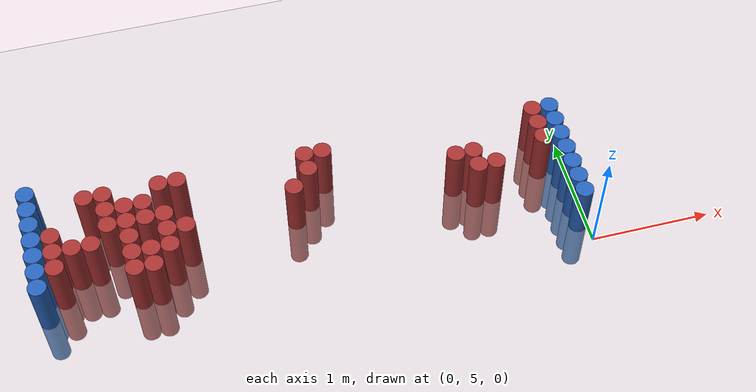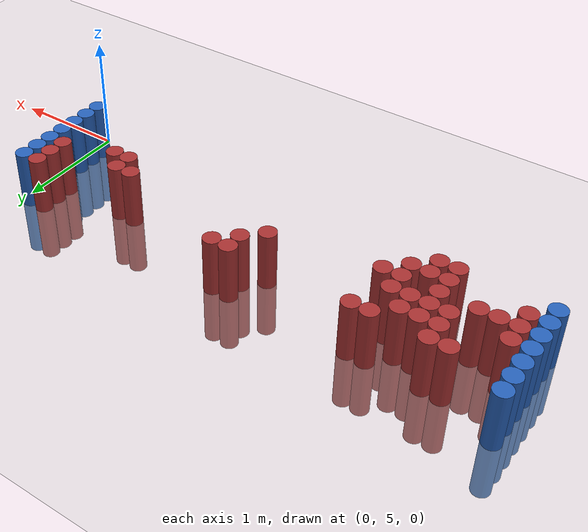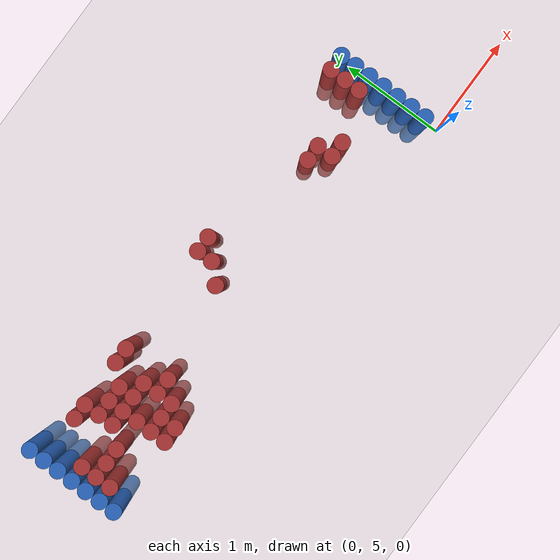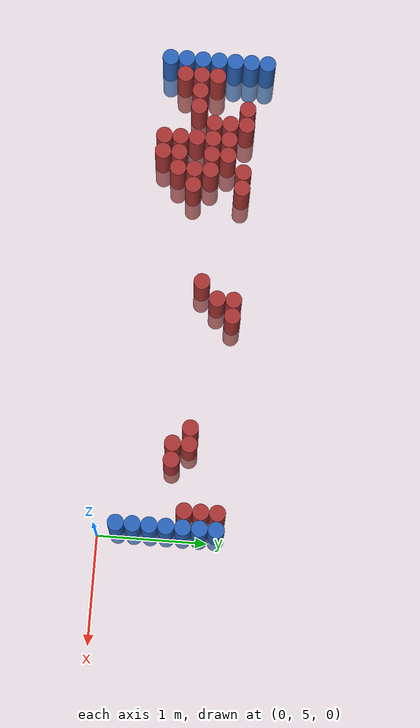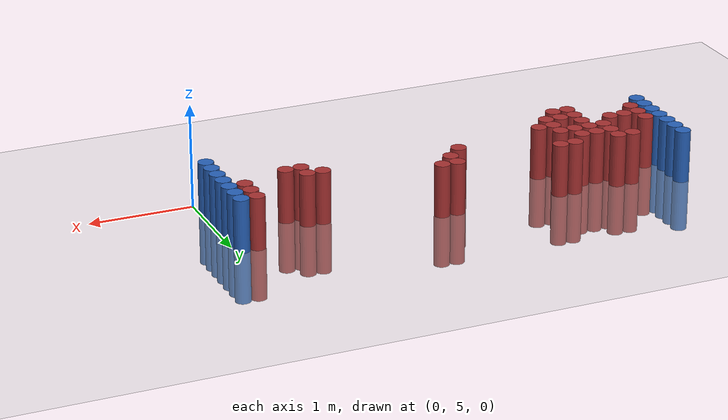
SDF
<sdf version="1.6">
 <world name="default">
  <model name="ground_plane">
   <static>1</static>
   <link name="link">
    <collision name="collision">
     <geometry><plane><normal>0 0 1</normal><size>100 100</size></plane></geometry>
     <surface><friction><ode><mu>100</mu><mu2>50</mu2></ode></friction></surface>
    </collision>
    <visual name="visual">
     <cast_shadows>0</cast_shadows>
     <geometry><plane><normal>0 0 1</normal><size>100 100</size></plane></geometry>
     <material>
      <script><uri>file://media/materials/scripts/gazebo.material</uri><name>Gazebo/Grey</name></script>
     </material>
    </visual>
   </link>
  </model>
  <model name="unit_cylinder_97">
   <static>1</static>
   <pose>-4.425000 5.325000 0.000000 0.000000 0.000000 0.000000</pose>
   <link name="link">
    <inertial>
     <mass>1</mass>
     <inertia><ixx>0.145833</ixx><ixy>0</ixy><ixz>0</ixz><iyy>0.145833</iyy><iyz>0</iyz><izz>0.125</izz></inertia>
    </inertial>
    <collision name="collision">
     <geometry><cylinder><radius>0.075000</radius><length>1</length></cylinder></geometry>
    </collision>
    <visual name="visual">
     <geometry><cylinder><radius>0.075000</radius><length>1</length></cylinder></geometry>
     <material>
      <ambient>0.152000 0.379000 0.720000 1</ambient>
      <diffuse>0.152000 0.379000 0.720000 1</diffuse>
     </material>
     <material>
      <script><name>Gazebo/Grey</name><uri>file://media/materials/scripts/gazebo.material</uri></script>
     </material>
    </visual>
   </link>
  </model>
  <model name="unit_cylinder_98">
   <static>1</static>
   <pose>-4.425000 5.475000 0.000000 0.000000 0.000000 0.000000</pose>
   <link name="link">
    <inertial>
     <mass>1</mass>
     <inertia><ixx>0.145833</ixx><ixy>0</ixy><ixz>0</ixz><iyy>0.145833</iyy><iyz>0</iyz><izz>0.125</izz></inertia>
    </inertial>
    <collision name="collision">
     <geometry><cylinder><radius>0.075000</radius><length>1</length></cylinder></geometry>
    </collision>
    <visual name="visual">
     <geometry><cylinder><radius>0.075000</radius><length>1</length></cylinder></geometry>
     <material>
      <ambient>0.152000 0.379000 0.720000 1</ambient>
      <diffuse>0.152000 0.379000 0.720000 1</diffuse>
     </material>
     <material>
      <script><name>Gazebo/Grey</name><uri>file://media/materials/scripts/gazebo.material</uri></script>
     </material>
    </visual>
   </link>
  </model>
  <model name="unit_cylinder_99">
   <static>1</static>
   <pose>-4.425000 5.625000 0.000000 0.000000 0.000000 0.000000</pose>
   <link name="link">
    <inertial>
     <mass>1</mass>
     <inertia><ixx>0.145833</ixx><ixy>0</ixy><ixz>0</ixz><iyy>0.145833</iyy><iyz>0</iyz><izz>0.125</izz></inertia>
    </inertial>
    <collision name="collision">
     <geometry><cylinder><radius>0.075000</radius><length>1</length></cylinder></geometry>
    </collision>
    <visual name="visual">
     <geometry><cylinder><radius>0.075000</radius><length>1</length></cylinder></geometry>
     <material>
      <ambient>0.152000 0.379000 0.720000 1</ambient>
      <diffuse>0.152000 0.379000 0.720000 1</diffuse>
     </material>
     <material>
      <script><name>Gazebo/Grey</name><uri>file://media/materials/scripts/gazebo.material</uri></script>
     </material>
    </visual>
   </link>
  </model>
  <model name="unit_cylinder_100">
   <static>1</static>
   <pose>-4.425000 5.775000 0.000000 0.000000 0.000000 0.000000</pose>
   <link name="link">
    <inertial>
     <mass>1</mass>
     <inertia><ixx>0.145833</ixx><ixy>0</ixy><ixz>0</ixz><iyy>0.145833</iyy><iyz>0</iyz><izz>0.125</izz></inertia>
    </inertial>
    <collision name="collision">
     <geometry><cylinder><radius>0.075000</radius><length>1</length></cylinder></geometry>
    </collision>
    <visual name="visual">
     <geometry><cylinder><radius>0.075000</radius><length>1</length></cylinder></geometry>
     <material>
      <ambient>0.152000 0.379000 0.720000 1</ambient>
      <diffuse>0.152000 0.379000 0.720000 1</diffuse>
     </material>
     <material>
      <script><name>Gazebo/Grey</name><uri>file://media/materials/scripts/gazebo.material</uri></script>
     </material>
    </visual>
   </link>
  </model>
  <model name="unit_cylinder_101">
   <static>1</static>
   <pose>-4.425000 5.925000 0.000000 0.000000 0.000000 0.000000</pose>
   <link name="link">
    <inertial>
     <mass>1</mass>
     <inertia><ixx>0.145833</ixx><ixy>0</ixy><ixz>0</ixz><iyy>0.145833</iyy><iyz>0</iyz><izz>0.125</izz></inertia>
    </inertial>
    <collision name="collision">
     <geometry><cylinder><radius>0.075000</radius><length>1</length></cylinder></geometry>
    </collision>
    <visual name="visual">
     <geometry><cylinder><radius>0.075000</radius><length>1</length></cylinder></geometry>
     <material>
      <ambient>0.152000 0.379000 0.720000 1</ambient>
      <diffuse>0.152000 0.379000 0.720000 1</diffuse>
     </material>
     <material>
      <script><name>Gazebo/Grey</name><uri>file://media/materials/scripts/gazebo.material</uri></script>
     </material>
    </visual>
   </link>
  </model>
  <model name="unit_cylinder_102">
   <static>1</static>
   <pose>-4.425000 6.075000 0.000000 0.000000 0.000000 0.000000</pose>
   <link name="link">
    <inertial>
     <mass>1</mass>
     <inertia><ixx>0.145833</ixx><ixy>0</ixy><ixz>0</ixz><iyy>0.145833</iyy><iyz>0</iyz><izz>0.125</izz></inertia>
    </inertial>
    <collision name="collision">
     <geometry><cylinder><radius>0.075000</radius><length>1</length></cylinder></geometry>
    </collision>
    <visual name="visual">
     <geometry><cylinder><radius>0.075000</radius><length>1</length></cylinder></geometry>
     <material>
      <ambient>0.152000 0.379000 0.720000 1</ambient>
      <diffuse>0.152000 0.379000 0.720000 1</diffuse>
     </material>
     <material>
      <script><name>Gazebo/Grey</name><uri>file://media/materials/scripts/gazebo.material</uri></script>
     </material>
    </visual>
   </link>
  </model>
  <model name="unit_cylinder_103">
   <static>1</static>
   <pose>-4.425000 6.225000 0.000000 0.000000 0.000000 0.000000</pose>
   <link name="link">
    <inertial>
     <mass>1</mass>
     <inertia><ixx>0.145833</ixx><ixy>0</ixy><ixz>0</ixz><iyy>0.145833</iyy><iyz>0</iyz><izz>0.125</izz></inertia>
    </inertial>
    <collision name="collision">
     <geometry><cylinder><radius>0.075000</radius><length>1</length></cylinder></geometry>
    </collision>
    <visual name="visual">
     <geometry><cylinder><radius>0.075000</radius><length>1</length></cylinder></geometry>
     <material>
      <ambient>0.152000 0.379000 0.720000 1</ambient>
      <diffuse>0.152000 0.379000 0.720000 1</diffuse>
     </material>
     <material>
      <script><name>Gazebo/Grey</name><uri>file://media/materials/scripts/gazebo.material</uri></script>
     </material>
    </visual>
   </link>
  </model>
  <model name="unit_cylinder_126">
   <static>1</static>
   <pose>-4.275000 5.475000 0.000000 0.000000 0.000000 0.000000</pose>
   <link name="link">
    <inertial>
     <mass>1</mass>
     <inertia><ixx>0.145833</ixx><ixy>0</ixy><ixz>0</ixz><iyy>0.145833</iyy><iyz>0</iyz><izz>0.125</izz></inertia>
    </inertial>
    <collision name="collision">
     <geometry><cylinder><radius>0.075000</radius><length>1</length></cylinder></geometry>
    </collision>
    <visual name="visual">
     <geometry><cylinder><radius>0.075000</radius><length>1</length></cylinder></geometry>
     <material>
      <ambient>0.648000 0.192000 0.192000 1</ambient>
      <diffuse>0.648000 0.192000 0.192000 1</diffuse>
     </material>
     <material>
      <script><name>Gazebo/Grey</name><uri>file://media/materials/scripts/gazebo.material</uri></script>
     </material>
    </visual>
   </link>
  </model>
  <model name="unit_cylinder_127">
   <static>1</static>
   <pose>-4.275000 5.625000 0.000000 0.000000 0.000000 0.000000</pose>
   <link name="link">
    <inertial>
     <mass>1</mass>
     <inertia><ixx>0.145833</ixx><ixy>0</ixy><ixz>0</ixz><iyy>0.145833</iyy><iyz>0</iyz><izz>0.125</izz></inertia>
    </inertial>
    <collision name="collision">
     <geometry><cylinder><radius>0.075000</radius><length>1</length></cylinder></geometry>
    </collision>
    <visual name="visual">
     <geometry><cylinder><radius>0.075000</radius><length>1</length></cylinder></geometry>
     <material>
      <ambient>0.648000 0.192000 0.192000 1</ambient>
      <diffuse>0.648000 0.192000 0.192000 1</diffuse>
     </material>
     <material>
      <script><name>Gazebo/Grey</name><uri>file://media/materials/scripts/gazebo.material</uri></script>
     </material>
    </visual>
   </link>
  </model>
  <model name="unit_cylinder_128">
   <static>1</static>
   <pose>-4.275000 5.775000 0.000000 0.000000 0.000000 0.000000</pose>
   <link name="link">
    <inertial>
     <mass>1</mass>
     <inertia><ixx>0.145833</ixx><ixy>0</ixy><ixz>0</ixz><iyy>0.145833</iyy><iyz>0</iyz><izz>0.125</izz></inertia>
    </inertial>
    <collision name="collision">
     <geometry><cylinder><radius>0.075000</radius><length>1</length></cylinder></geometry>
    </collision>
    <visual name="visual">
     <geometry><cylinder><radius>0.075000</radius><length>1</length></cylinder></geometry>
     <material>
      <ambient>0.648000 0.192000 0.192000 1</ambient>
      <diffuse>0.648000 0.192000 0.192000 1</diffuse>
     </material>
     <material>
      <script><name>Gazebo/Grey</name><uri>file://media/materials/scripts/gazebo.material</uri></script>
     </material>
    </visual>
   </link>
  </model>
  <model name="unit_cylinder_135">
   <static>1</static>
   <pose>-4.125000 5.625000 0.000000 0.000000 0.000000 0.000000</pose>
   <link name="link">
    <inertial>
     <mass>1</mass>
     <inertia><ixx>0.145833</ixx><ixy>0</ixy><ixz>0</ixz><iyy>0.145833</iyy><iyz>0</iyz><izz>0.125</izz></inertia>
    </inertial>
    <collision name="collision">
     <geometry><cylinder><radius>0.075000</radius><length>1</length></cylinder></geometry>
    </collision>
    <visual name="visual">
     <geometry><cylinder><radius>0.075000</radius><length>1</length></cylinder></geometry>
     <material>
      <ambient>0.648000 0.192000 0.192000 1</ambient>
      <diffuse>0.648000 0.192000 0.192000 1</diffuse>
     </material>
     <material>
      <script><name>Gazebo/Grey</name><uri>file://media/materials/scripts/gazebo.material</uri></script>
     </material>
    </visual>
   </link>
  </model>
  <model name="unit_cylinder_139">
   <static>1</static>
   <pose>-3.975000 5.625000 0.000000 0.000000 0.000000 0.000000</pose>
   <link name="link">
    <inertial>
     <mass>1</mass>
     <inertia><ixx>0.145833</ixx><ixy>0</ixy><ixz>0</ixz><iyy>0.145833</iyy><iyz>0</iyz><izz>0.125</izz></inertia>
    </inertial>
    <collision name="collision">
     <geometry><cylinder><radius>0.075000</radius><length>1</length></cylinder></geometry>
    </collision>
    <visual name="visual">
     <geometry><cylinder><radius>0.075000</radius><length>1</length></cylinder></geometry>
     <material>
      <ambient>0.648000 0.192000 0.192000 1</ambient>
      <diffuse>0.648000 0.192000 0.192000 1</diffuse>
     </material>
     <material>
      <script><name>Gazebo/Grey</name><uri>file://media/materials/scripts/gazebo.material</uri></script>
     </material>
    </visual>
   </link>
  </model>
  <model name="unit_cylinder_140">
   <static>1</static>
   <pose>-3.975000 6.075000 0.000000 0.000000 0.000000 0.000000</pose>
   <link name="link">
    <inertial>
     <mass>1</mass>
     <inertia><ixx>0.145833</ixx><ixy>0</ixy><ixz>0</ixz><iyy>0.145833</iyy><iyz>0</iyz><izz>0.125</izz></inertia>
    </inertial>
    <collision name="collision">
     <geometry><cylinder><radius>0.075000</radius><length>1</length></cylinder></geometry>
    </collision>
    <visual name="visual">
     <geometry><cylinder><radius>0.075000</radius><length>1</length></cylinder></geometry>
     <material>
      <ambient>0.648000 0.192000 0.192000 1</ambient>
      <diffuse>0.648000 0.192000 0.192000 1</diffuse>
     </material>
     <material>
      <script><name>Gazebo/Grey</name><uri>file://media/materials/scripts/gazebo.material</uri></script>
     </material>
    </visual>
   </link>
  </model>
  <model name="unit_cylinder_144">
   <static>1</static>
   <pose>-3.825000 5.775000 0.000000 0.000000 0.000000 0.000000</pose>
   <link name="link">
    <inertial>
     <mass>1</mass>
     <inertia><ixx>0.145833</ixx><ixy>0</ixy><ixz>0</ixz><iyy>0.145833</iyy><iyz>0</iyz><izz>0.125</izz></inertia>
    </inertial>
    <collision name="collision">
     <geometry><cylinder><radius>0.075000</radius><length>1</length></cylinder></geometry>
    </collision>
    <visual name="visual">
     <geometry><cylinder><radius>0.075000</radius><length>1</length></cylinder></geometry>
     <material>
      <ambient>0.648000 0.192000 0.192000 1</ambient>
      <diffuse>0.648000 0.192000 0.192000 1</diffuse>
     </material>
     <material>
      <script><name>Gazebo/Grey</name><uri>file://media/materials/scripts/gazebo.material</uri></script>
     </material>
    </visual>
   </link>
  </model>
  <model name="unit_cylinder_145">
   <static>1</static>
   <pose>-3.825000 5.925000 0.000000 0.000000 0.000000 0.000000</pose>
   <link name="link">
    <inertial>
     <mass>1</mass>
     <inertia><ixx>0.145833</ixx><ixy>0</ixy><ixz>0</ixz><iyy>0.145833</iyy><iyz>0</iyz><izz>0.125</izz></inertia>
    </inertial>
    <collision name="collision">
     <geometry><cylinder><radius>0.075000</radius><length>1</length></cylinder></geometry>
    </collision>
    <visual name="visual">
     <geometry><cylinder><radius>0.075000</radius><length>1</length></cylinder></geometry>
     <material>
      <ambient>0.648000 0.192000 0.192000 1</ambient>
      <diffuse>0.648000 0.192000 0.192000 1</diffuse>
     </material>
     <material>
      <script><name>Gazebo/Grey</name><uri>file://media/materials/scripts/gazebo.material</uri></script>
     </material>
    </visual>
   </link>
  </model>
  <model name="unit_cylinder_146">
   <static>1</static>
   <pose>-3.825000 6.075000 0.000000 0.000000 0.000000 0.000000</pose>
   <link name="link">
    <inertial>
     <mass>1</mass>
     <inertia><ixx>0.145833</ixx><ixy>0</ixy><ixz>0</ixz><iyy>0.145833</iyy><iyz>0</iyz><izz>0.125</izz></inertia>
    </inertial>
    <collision name="collision">
     <geometry><cylinder><radius>0.075000</radius><length>1</length></cylinder></geometry>
    </collision>
    <visual name="visual">
     <geometry><cylinder><radius>0.075000</radius><length>1</length></cylinder></geometry>
     <material>
      <ambient>0.648000 0.192000 0.192000 1</ambient>
      <diffuse>0.648000 0.192000 0.192000 1</diffuse>
     </material>
     <material>
      <script><name>Gazebo/Grey</name><uri>file://media/materials/scripts/gazebo.material</uri></script>
     </material>
    </visual>
   </link>
  </model>
  <model name="unit_cylinder_149">
   <static>1</static>
   <pose>-3.675000 5.325000 0.000000 0.000000 0.000000 0.000000</pose>
   <link name="link">
    <inertial>
     <mass>1</mass>
     <inertia><ixx>0.145833</ixx><ixy>0</ixy><ixz>0</ixz><iyy>0.145833</iyy><iyz>0</iyz><izz>0.125</izz></inertia>
    </inertial>
    <collision name="collision">
     <geometry><cylinder><radius>0.075000</radius><length>1</length></cylinder></geometry>
    </collision>
    <visual name="visual">
     <geometry><cylinder><radius>0.075000</radius><length>1</length></cylinder></geometry>
     <material>
      <ambient>0.648000 0.192000 0.192000 1</ambient>
      <diffuse>0.648000 0.192000 0.192000 1</diffuse>
     </material>
     <material>
      <script><name>Gazebo/Grey</name><uri>file://media/materials/scripts/gazebo.material</uri></script>
     </material>
    </visual>
   </link>
  </model>
  <model name="unit_cylinder_150">
   <static>1</static>
   <pose>-3.675000 5.475000 0.000000 0.000000 0.000000 0.000000</pose>
   <link name="link">
    <inertial>
     <mass>1</mass>
     <inertia><ixx>0.145833</ixx><ixy>0</ixy><ixz>0</ixz><iyy>0.145833</iyy><iyz>0</iyz><izz>0.125</izz></inertia>
    </inertial>
    <collision name="collision">
     <geometry><cylinder><radius>0.075000</radius><length>1</length></cylinder></geometry>
    </collision>
    <visual name="visual">
     <geometry><cylinder><radius>0.075000</radius><length>1</length></cylinder></geometry>
     <material>
      <ambient>0.648000 0.192000 0.192000 1</ambient>
      <diffuse>0.648000 0.192000 0.192000 1</diffuse>
     </material>
     <material>
      <script><name>Gazebo/Grey</name><uri>file://media/materials/scripts/gazebo.material</uri></script>
     </material>
    </visual>
   </link>
  </model>
  <model name="unit_cylinder_151">
   <static>1</static>
   <pose>-3.675000 5.625000 0.000000 0.000000 0.000000 0.000000</pose>
   <link name="link">
    <inertial>
     <mass>1</mass>
     <inertia><ixx>0.145833</ixx><ixy>0</ixy><ixz>0</ixz><iyy>0.145833</iyy><iyz>0</iyz><izz>0.125</izz></inertia>
    </inertial>
    <collision name="collision">
     <geometry><cylinder><radius>0.075000</radius><length>1</length></cylinder></geometry>
    </collision>
    <visual name="visual">
     <geometry><cylinder><radius>0.075000</radius><length>1</length></cylinder></geometry>
     <material>
      <ambient>0.648000 0.192000 0.192000 1</ambient>
      <diffuse>0.648000 0.192000 0.192000 1</diffuse>
     </material>
     <material>
      <script><name>Gazebo/Grey</name><uri>file://media/materials/scripts/gazebo.material</uri></script>
     </material>
    </visual>
   </link>
  </model>
  <model name="unit_cylinder_152">
   <static>1</static>
   <pose>-3.675000 5.775000 0.000000 0.000000 0.000000 0.000000</pose>
   <link name="link">
    <inertial>
     <mass>1</mass>
     <inertia><ixx>0.145833</ixx><ixy>0</ixy><ixz>0</ixz><iyy>0.145833</iyy><iyz>0</iyz><izz>0.125</izz></inertia>
    </inertial>
    <collision name="collision">
     <geometry><cylinder><radius>0.075000</radius><length>1</length></cylinder></geometry>
    </collision>
    <visual name="visual">
     <geometry><cylinder><radius>0.075000</radius><length>1</length></cylinder></geometry>
     <material>
      <ambient>0.648000 0.192000 0.192000 1</ambient>
      <diffuse>0.648000 0.192000 0.192000 1</diffuse>
     </material>
     <material>
      <script><name>Gazebo/Grey</name><uri>file://media/materials/scripts/gazebo.material</uri></script>
     </material>
    </visual>
   </link>
  </model>
  <model name="unit_cylinder_153">
   <static>1</static>
   <pose>-3.675000 5.925000 0.000000 0.000000 0.000000 0.000000</pose>
   <link name="link">
    <inertial>
     <mass>1</mass>
     <inertia><ixx>0.145833</ixx><ixy>0</ixy><ixz>0</ixz><iyy>0.145833</iyy><iyz>0</iyz><izz>0.125</izz></inertia>
    </inertial>
    <collision name="collision">
     <geometry><cylinder><radius>0.075000</radius><length>1</length></cylinder></geometry>
    </collision>
    <visual name="visual">
     <geometry><cylinder><radius>0.075000</radius><length>1</length></cylinder></geometry>
     <material>
      <ambient>0.648000 0.192000 0.192000 1</ambient>
      <diffuse>0.648000 0.192000 0.192000 1</diffuse>
     </material>
     <material>
      <script><name>Gazebo/Grey</name><uri>file://media/materials/scripts/gazebo.material</uri></script>
     </material>
    </visual>
   </link>
  </model>
  <model name="unit_cylinder_161">
   <static>1</static>
   <pose>-3.525000 5.325000 0.000000 0.000000 0.000000 0.000000</pose>
   <link name="link">
    <inertial>
     <mass>1</mass>
     <inertia><ixx>0.145833</ixx><ixy>0</ixy><ixz>0</ixz><iyy>0.145833</iyy><iyz>0</iyz><izz>0.125</izz></inertia>
    </inertial>
    <collision name="collision">
     <geometry><cylinder><radius>0.075000</radius><length>1</length></cylinder></geometry>
    </collision>
    <visual name="visual">
     <geometry><cylinder><radius>0.075000</radius><length>1</length></cylinder></geometry>
     <material>
      <ambient>0.648000 0.192000 0.192000 1</ambient>
      <diffuse>0.648000 0.192000 0.192000 1</diffuse>
     </material>
     <material>
      <script><name>Gazebo/Grey</name><uri>file://media/materials/scripts/gazebo.material</uri></script>
     </material>
    </visual>
   </link>
  </model>
  <model name="unit_cylinder_162">
   <static>1</static>
   <pose>-3.525000 5.475000 0.000000 0.000000 0.000000 0.000000</pose>
   <link name="link">
    <inertial>
     <mass>1</mass>
     <inertia><ixx>0.145833</ixx><ixy>0</ixy><ixz>0</ixz><iyy>0.145833</iyy><iyz>0</iyz><izz>0.125</izz></inertia>
    </inertial>
    <collision name="collision">
     <geometry><cylinder><radius>0.075000</radius><length>1</length></cylinder></geometry>
    </collision>
    <visual name="visual">
     <geometry><cylinder><radius>0.075000</radius><length>1</length></cylinder></geometry>
     <material>
      <ambient>0.648000 0.192000 0.192000 1</ambient>
      <diffuse>0.648000 0.192000 0.192000 1</diffuse>
     </material>
     <material>
      <script><name>Gazebo/Grey</name><uri>file://media/materials/scripts/gazebo.material</uri></script>
     </material>
    </visual>
   </link>
  </model>
  <model name="unit_cylinder_163">
   <static>1</static>
   <pose>-3.525000 5.775000 0.000000 0.000000 0.000000 0.000000</pose>
   <link name="link">
    <inertial>
     <mass>1</mass>
     <inertia><ixx>0.145833</ixx><ixy>0</ixy><ixz>0</ixz><iyy>0.145833</iyy><iyz>0</iyz><izz>0.125</izz></inertia>
    </inertial>
    <collision name="collision">
     <geometry><cylinder><radius>0.075000</radius><length>1</length></cylinder></geometry>
    </collision>
    <visual name="visual">
     <geometry><cylinder><radius>0.075000</radius><length>1</length></cylinder></geometry>
     <material>
      <ambient>0.648000 0.192000 0.192000 1</ambient>
      <diffuse>0.648000 0.192000 0.192000 1</diffuse>
     </material>
     <material>
      <script><name>Gazebo/Grey</name><uri>file://media/materials/scripts/gazebo.material</uri></script>
     </material>
    </visual>
   </link>
  </model>
  <model name="unit_cylinder_164">
   <static>1</static>
   <pose>-3.525000 5.925000 0.000000 0.000000 0.000000 0.000000</pose>
   <link name="link">
    <inertial>
     <mass>1</mass>
     <inertia><ixx>0.145833</ixx><ixy>0</ixy><ixz>0</ixz><iyy>0.145833</iyy><iyz>0</iyz><izz>0.125</izz></inertia>
    </inertial>
    <collision name="collision">
     <geometry><cylinder><radius>0.075000</radius><length>1</length></cylinder></geometry>
    </collision>
    <visual name="visual">
     <geometry><cylinder><radius>0.075000</radius><length>1</length></cylinder></geometry>
     <material>
      <ambient>0.648000 0.192000 0.192000 1</ambient>
      <diffuse>0.648000 0.192000 0.192000 1</diffuse>
     </material>
     <material>
      <script><name>Gazebo/Grey</name><uri>file://media/materials/scripts/gazebo.material</uri></script>
     </material>
    </visual>
   </link>
  </model>
  <model name="unit_cylinder_170">
   <static>1</static>
   <pose>-3.375000 5.475000 0.000000 0.000000 0.000000 0.000000</pose>
   <link name="link">
    <inertial>
     <mass>1</mass>
     <inertia><ixx>0.145833</ixx><ixy>0</ixy><ixz>0</ixz><iyy>0.145833</iyy><iyz>0</iyz><izz>0.125</izz></inertia>
    </inertial>
    <collision name="collision">
     <geometry><cylinder><radius>0.075000</radius><length>1</length></cylinder></geometry>
    </collision>
    <visual name="visual">
     <geometry><cylinder><radius>0.075000</radius><length>1</length></cylinder></geometry>
     <material>
      <ambient>0.648000 0.192000 0.192000 1</ambient>
      <diffuse>0.648000 0.192000 0.192000 1</diffuse>
     </material>
     <material>
      <script><name>Gazebo/Grey</name><uri>file://media/materials/scripts/gazebo.material</uri></script>
     </material>
    </visual>
   </link>
  </model>
  <model name="unit_cylinder_171">
   <static>1</static>
   <pose>-3.375000 5.625000 0.000000 0.000000 0.000000 0.000000</pose>
   <link name="link">
    <inertial>
     <mass>1</mass>
     <inertia><ixx>0.145833</ixx><ixy>0</ixy><ixz>0</ixz><iyy>0.145833</iyy><iyz>0</iyz><izz>0.125</izz></inertia>
    </inertial>
    <collision name="collision">
     <geometry><cylinder><radius>0.075000</radius><length>1</length></cylinder></geometry>
    </collision>
    <visual name="visual">
     <geometry><cylinder><radius>0.075000</radius><length>1</length></cylinder></geometry>
     <material>
      <ambient>0.648000 0.192000 0.192000 1</ambient>
      <diffuse>0.648000 0.192000 0.192000 1</diffuse>
     </material>
     <material>
      <script><name>Gazebo/Grey</name><uri>file://media/materials/scripts/gazebo.material</uri></script>
     </material>
    </visual>
   </link>
  </model>
  <model name="unit_cylinder_172">
   <static>1</static>
   <pose>-3.375000 5.775000 0.000000 0.000000 0.000000 0.000000</pose>
   <link name="link">
    <inertial>
     <mass>1</mass>
     <inertia><ixx>0.145833</ixx><ixy>0</ixy><ixz>0</ixz><iyy>0.145833</iyy><iyz>0</iyz><izz>0.125</izz></inertia>
    </inertial>
    <collision name="collision">
     <geometry><cylinder><radius>0.075000</radius><length>1</length></cylinder></geometry>
    </collision>
    <visual name="visual">
     <geometry><cylinder><radius>0.075000</radius><length>1</length></cylinder></geometry>
     <material>
      <ambient>0.648000 0.192000 0.192000 1</ambient>
      <diffuse>0.648000 0.192000 0.192000 1</diffuse>
     </material>
     <material>
      <script><name>Gazebo/Grey</name><uri>file://media/materials/scripts/gazebo.material</uri></script>
     </material>
    </visual>
   </link>
  </model>
  <model name="unit_cylinder_173">
   <static>1</static>
   <pose>-3.375000 6.075000 0.000000 0.000000 0.000000 0.000000</pose>
   <link name="link">
    <inertial>
     <mass>1</mass>
     <inertia><ixx>0.145833</ixx><ixy>0</ixy><ixz>0</ixz><iyy>0.145833</iyy><iyz>0</iyz><izz>0.125</izz></inertia>
    </inertial>
    <collision name="collision">
     <geometry><cylinder><radius>0.075000</radius><length>1</length></cylinder></geometry>
    </collision>
    <visual name="visual">
     <geometry><cylinder><radius>0.075000</radius><length>1</length></cylinder></geometry>
     <material>
      <ambient>0.648000 0.192000 0.192000 1</ambient>
      <diffuse>0.648000 0.192000 0.192000 1</diffuse>
     </material>
     <material>
      <script><name>Gazebo/Grey</name><uri>file://media/materials/scripts/gazebo.material</uri></script>
     </material>
    </visual>
   </link>
  </model>
  <model name="unit_cylinder_179">
   <static>1</static>
   <pose>-3.225000 5.625000 0.000000 0.000000 0.000000 0.000000</pose>
   <link name="link">
    <inertial>
     <mass>1</mass>
     <inertia><ixx>0.145833</ixx><ixy>0</ixy><ixz>0</ixz><iyy>0.145833</iyy><iyz>0</iyz><izz>0.125</izz></inertia>
    </inertial>
    <collision name="collision">
     <geometry><cylinder><radius>0.075000</radius><length>1</length></cylinder></geometry>
    </collision>
    <visual name="visual">
     <geometry><cylinder><radius>0.075000</radius><length>1</length></cylinder></geometry>
     <material>
      <ambient>0.648000 0.192000 0.192000 1</ambient>
      <diffuse>0.648000 0.192000 0.192000 1</diffuse>
     </material>
     <material>
      <script><name>Gazebo/Grey</name><uri>file://media/materials/scripts/gazebo.material</uri></script>
     </material>
    </visual>
   </link>
  </model>
  <model name="unit_cylinder_180">
   <static>1</static>
   <pose>-3.225000 6.075000 0.000000 0.000000 0.000000 0.000000</pose>
   <link name="link">
    <inertial>
     <mass>1</mass>
     <inertia><ixx>0.145833</ixx><ixy>0</ixy><ixz>0</ixz><iyy>0.145833</iyy><iyz>0</iyz><izz>0.125</izz></inertia>
    </inertial>
    <collision name="collision">
     <geometry><cylinder><radius>0.075000</radius><length>1</length></cylinder></geometry>
    </collision>
    <visual name="visual">
     <geometry><cylinder><radius>0.075000</radius><length>1</length></cylinder></geometry>
     <material>
      <ambient>0.648000 0.192000 0.192000 1</ambient>
      <diffuse>0.648000 0.192000 0.192000 1</diffuse>
     </material>
     <material>
      <script><name>Gazebo/Grey</name><uri>file://media/materials/scripts/gazebo.material</uri></script>
     </material>
    </visual>
   </link>
  </model>
  <model name="unit_cylinder_195">
   <static>1</static>
   <pose>-2.325000 5.775000 0.000000 0.000000 0.000000 0.000000</pose>
   <link name="link">
    <inertial>
     <mass>1</mass>
     <inertia><ixx>0.145833</ixx><ixy>0</ixy><ixz>0</ixz><iyy>0.145833</iyy><iyz>0</iyz><izz>0.125</izz></inertia>
    </inertial>
    <collision name="collision">
     <geometry><cylinder><radius>0.075000</radius><length>1</length></cylinder></geometry>
    </collision>
    <visual name="visual">
     <geometry><cylinder><radius>0.075000</radius><length>1</length></cylinder></geometry>
     <material>
      <ambient>0.648000 0.192000 0.192000 1</ambient>
      <diffuse>0.648000 0.192000 0.192000 1</diffuse>
     </material>
     <material>
      <script><name>Gazebo/Grey</name><uri>file://media/materials/scripts/gazebo.material</uri></script>
     </material>
    </visual>
   </link>
  </model>
  <model name="unit_cylinder_204">
   <static>1</static>
   <pose>-2.175000 5.925000 0.000000 0.000000 0.000000 0.000000</pose>
   <link name="link">
    <inertial>
     <mass>1</mass>
     <inertia><ixx>0.145833</ixx><ixy>0</ixy><ixz>0</ixz><iyy>0.145833</iyy><iyz>0</iyz><izz>0.125</izz></inertia>
    </inertial>
    <collision name="collision">
     <geometry><cylinder><radius>0.075000</radius><length>1</length></cylinder></geometry>
    </collision>
    <visual name="visual">
     <geometry><cylinder><radius>0.075000</radius><length>1</length></cylinder></geometry>
     <material>
      <ambient>0.648000 0.192000 0.192000 1</ambient>
      <diffuse>0.648000 0.192000 0.192000 1</diffuse>
     </material>
     <material>
      <script><name>Gazebo/Grey</name><uri>file://media/materials/scripts/gazebo.material</uri></script>
     </material>
    </visual>
   </link>
  </model>
  <model name="unit_cylinder_205">
   <static>1</static>
   <pose>-2.175000 6.075000 0.000000 0.000000 0.000000 0.000000</pose>
   <link name="link">
    <inertial>
     <mass>1</mass>
     <inertia><ixx>0.145833</ixx><ixy>0</ixy><ixz>0</ixz><iyy>0.145833</iyy><iyz>0</iyz><izz>0.125</izz></inertia>
    </inertial>
    <collision name="collision">
     <geometry><cylinder><radius>0.075000</radius><length>1</length></cylinder></geometry>
    </collision>
    <visual name="visual">
     <geometry><cylinder><radius>0.075000</radius><length>1</length></cylinder></geometry>
     <material>
      <ambient>0.648000 0.192000 0.192000 1</ambient>
      <diffuse>0.648000 0.192000 0.192000 1</diffuse>
     </material>
     <material>
      <script><name>Gazebo/Grey</name><uri>file://media/materials/scripts/gazebo.material</uri></script>
     </material>
    </visual>
   </link>
  </model>
  <model name="unit_cylinder_212">
   <static>1</static>
   <pose>-2.025000 6.075000 0.000000 0.000000 0.000000 0.000000</pose>
   <link name="link">
    <inertial>
     <mass>1</mass>
     <inertia><ixx>0.145833</ixx><ixy>0</ixy><ixz>0</ixz><iyy>0.145833</iyy><iyz>0</iyz><izz>0.125</izz></inertia>
    </inertial>
    <collision name="collision">
     <geometry><cylinder><radius>0.075000</radius><length>1</length></cylinder></geometry>
    </collision>
    <visual name="visual">
     <geometry><cylinder><radius>0.075000</radius><length>1</length></cylinder></geometry>
     <material>
      <ambient>0.648000 0.192000 0.192000 1</ambient>
      <diffuse>0.648000 0.192000 0.192000 1</diffuse>
     </material>
     <material>
      <script><name>Gazebo/Grey</name><uri>file://media/materials/scripts/gazebo.material</uri></script>
     </material>
    </visual>
   </link>
  </model>
  <model name="unit_cylinder_238">
   <static>1</static>
   <pose>-0.975000 5.775000 0.000000 0.000000 0.000000 0.000000</pose>
   <link name="link">
    <inertial>
     <mass>1</mass>
     <inertia><ixx>0.145833</ixx><ixy>0</ixy><ixz>0</ixz><iyy>0.145833</iyy><iyz>0</iyz><izz>0.125</izz></inertia>
    </inertial>
    <collision name="collision">
     <geometry><cylinder><radius>0.075000</radius><length>1</length></cylinder></geometry>
    </collision>
    <visual name="visual">
     <geometry><cylinder><radius>0.075000</radius><length>1</length></cylinder></geometry>
     <material>
      <ambient>0.648000 0.192000 0.192000 1</ambient>
      <diffuse>0.648000 0.192000 0.192000 1</diffuse>
     </material>
     <material>
      <script><name>Gazebo/Grey</name><uri>file://media/materials/scripts/gazebo.material</uri></script>
     </material>
    </visual>
   </link>
  </model>
  <model name="unit_cylinder_239">
   <static>1</static>
   <pose>-0.825000 5.625000 0.000000 0.000000 0.000000 0.000000</pose>
   <link name="link">
    <inertial>
     <mass>1</mass>
     <inertia><ixx>0.145833</ixx><ixy>0</ixy><ixz>0</ixz><iyy>0.145833</iyy><iyz>0</iyz><izz>0.125</izz></inertia>
    </inertial>
    <collision name="collision">
     <geometry><cylinder><radius>0.075000</radius><length>1</length></cylinder></geometry>
    </collision>
    <visual name="visual">
     <geometry><cylinder><radius>0.075000</radius><length>1</length></cylinder></geometry>
     <material>
      <ambient>0.648000 0.192000 0.192000 1</ambient>
      <diffuse>0.648000 0.192000 0.192000 1</diffuse>
     </material>
     <material>
      <script><name>Gazebo/Grey</name><uri>file://media/materials/scripts/gazebo.material</uri></script>
     </material>
    </visual>
   </link>
  </model>
  <model name="unit_cylinder_240">
   <static>1</static>
   <pose>-0.825000 5.775000 0.000000 0.000000 0.000000 0.000000</pose>
   <link name="link">
    <inertial>
     <mass>1</mass>
     <inertia><ixx>0.145833</ixx><ixy>0</ixy><ixz>0</ixz><iyy>0.145833</iyy><iyz>0</iyz><izz>0.125</izz></inertia>
    </inertial>
    <collision name="collision">
     <geometry><cylinder><radius>0.075000</radius><length>1</length></cylinder></geometry>
    </collision>
    <visual name="visual">
     <geometry><cylinder><radius>0.075000</radius><length>1</length></cylinder></geometry>
     <material>
      <ambient>0.648000 0.192000 0.192000 1</ambient>
      <diffuse>0.648000 0.192000 0.192000 1</diffuse>
     </material>
     <material>
      <script><name>Gazebo/Grey</name><uri>file://media/materials/scripts/gazebo.material</uri></script>
     </material>
    </visual>
   </link>
  </model>
  <model name="unit_cylinder_241">
   <static>1</static>
   <pose>-0.675000 5.625000 0.000000 0.000000 0.000000 0.000000</pose>
   <link name="link">
    <inertial>
     <mass>1</mass>
     <inertia><ixx>0.145833</ixx><ixy>0</ixy><ixz>0</ixz><iyy>0.145833</iyy><iyz>0</iyz><izz>0.125</izz></inertia>
    </inertial>
    <collision name="collision">
     <geometry><cylinder><radius>0.075000</radius><length>1</length></cylinder></geometry>
    </collision>
    <visual name="visual">
     <geometry><cylinder><radius>0.075000</radius><length>1</length></cylinder></geometry>
     <material>
      <ambient>0.648000 0.192000 0.192000 1</ambient>
      <diffuse>0.648000 0.192000 0.192000 1</diffuse>
     </material>
     <material>
      <script><name>Gazebo/Grey</name><uri>file://media/materials/scripts/gazebo.material</uri></script>
     </material>
    </visual>
   </link>
  </model>
  <model name="unit_cylinder_249">
   <static>1</static>
   <pose>-0.225000 5.775000 0.000000 0.000000 0.000000 0.000000</pose>
   <link name="link">
    <inertial>
     <mass>1</mass>
     <inertia><ixx>0.145833</ixx><ixy>0</ixy><ixz>0</ixz><iyy>0.145833</iyy><iyz>0</iyz><izz>0.125</izz></inertia>
    </inertial>
    <collision name="collision">
     <geometry><cylinder><radius>0.075000</radius><length>1</length></cylinder></geometry>
    </collision>
    <visual name="visual">
     <geometry><cylinder><radius>0.075000</radius><length>1</length></cylinder></geometry>
     <material>
      <ambient>0.648000 0.192000 0.192000 1</ambient>
      <diffuse>0.648000 0.192000 0.192000 1</diffuse>
     </material>
     <material>
      <script><name>Gazebo/Grey</name><uri>file://media/materials/scripts/gazebo.material</uri></script>
     </material>
    </visual>
   </link>
  </model>
  <model name="unit_cylinder_250">
   <static>1</static>
   <pose>-0.225000 5.925000 0.000000 0.000000 0.000000 0.000000</pose>
   <link name="link">
    <inertial>
     <mass>1</mass>
     <inertia><ixx>0.145833</ixx><ixy>0</ixy><ixz>0</ixz><iyy>0.145833</iyy><iyz>0</iyz><izz>0.125</izz></inertia>
    </inertial>
    <collision name="collision">
     <geometry><cylinder><radius>0.075000</radius><length>1</length></cylinder></geometry>
    </collision>
    <visual name="visual">
     <geometry><cylinder><radius>0.075000</radius><length>1</length></cylinder></geometry>
     <material>
      <ambient>0.648000 0.192000 0.192000 1</ambient>
      <diffuse>0.648000 0.192000 0.192000 1</diffuse>
     </material>
     <material>
      <script><name>Gazebo/Grey</name><uri>file://media/materials/scripts/gazebo.material</uri></script>
     </material>
    </visual>
   </link>
  </model>
  <model name="unit_cylinder_251">
   <static>1</static>
   <pose>-0.225000 6.075000 0.000000 0.000000 0.000000 0.000000</pose>
   <link name="link">
    <inertial>
     <mass>1</mass>
     <inertia><ixx>0.145833</ixx><ixy>0</ixy><ixz>0</ixz><iyy>0.145833</iyy><iyz>0</iyz><izz>0.125</izz></inertia>
    </inertial>
    <collision name="collision">
     <geometry><cylinder><radius>0.075000</radius><length>1</length></cylinder></geometry>
    </collision>
    <visual name="visual">
     <geometry><cylinder><radius>0.075000</radius><length>1</length></cylinder></geometry>
     <material>
      <ambient>0.648000 0.192000 0.192000 1</ambient>
      <diffuse>0.648000 0.192000 0.192000 1</diffuse>
     </material>
     <material>
      <script><name>Gazebo/Grey</name><uri>file://media/materials/scripts/gazebo.material</uri></script>
     </material>
    </visual>
   </link>
  </model>
  <model name="unit_cylinder_264">
   <static>1</static>
   <pose>-0.075000 5.175000 0.000000 0.000000 0.000000 0.000000</pose>
   <link name="link">
    <inertial>
     <mass>1</mass>
     <inertia><ixx>0.145833</ixx><ixy>0</ixy><ixz>0</ixz><iyy>0.145833</iyy><iyz>0</iyz><izz>0.125</izz></inertia>
    </inertial>
    <collision name="collision">
     <geometry><cylinder><radius>0.075000</radius><length>1</length></cylinder></geometry>
    </collision>
    <visual name="visual">
     <geometry><cylinder><radius>0.075000</radius><length>1</length></cylinder></geometry>
     <material>
      <ambient>0.152000 0.379000 0.720000 1</ambient>
      <diffuse>0.152000 0.379000 0.720000 1</diffuse>
     </material>
     <material>
      <script><name>Gazebo/Grey</name><uri>file://media/materials/scripts/gazebo.material</uri></script>
     </material>
    </visual>
   </link>
  </model>
  <model name="unit_cylinder_265">
   <static>1</static>
   <pose>-0.075000 5.325000 0.000000 0.000000 0.000000 0.000000</pose>
   <link name="link">
    <inertial>
     <mass>1</mass>
     <inertia><ixx>0.145833</ixx><ixy>0</ixy><ixz>0</ixz><iyy>0.145833</iyy><iyz>0</iyz><izz>0.125</izz></inertia>
    </inertial>
    <collision name="collision">
     <geometry><cylinder><radius>0.075000</radius><length>1</length></cylinder></geometry>
    </collision>
    <visual name="visual">
     <geometry><cylinder><radius>0.075000</radius><length>1</length></cylinder></geometry>
     <material>
      <ambient>0.152000 0.379000 0.720000 1</ambient>
      <diffuse>0.152000 0.379000 0.720000 1</diffuse>
     </material>
     <material>
      <script><name>Gazebo/Grey</name><uri>file://media/materials/scripts/gazebo.material</uri></script>
     </material>
    </visual>
   </link>
  </model>
  <model name="unit_cylinder_266">
   <static>1</static>
   <pose>-0.075000 5.475000 0.000000 0.000000 0.000000 0.000000</pose>
   <link name="link">
    <inertial>
     <mass>1</mass>
     <inertia><ixx>0.145833</ixx><ixy>0</ixy><ixz>0</ixz><iyy>0.145833</iyy><iyz>0</iyz><izz>0.125</izz></inertia>
    </inertial>
    <collision name="collision">
     <geometry><cylinder><radius>0.075000</radius><length>1</length></cylinder></geometry>
    </collision>
    <visual name="visual">
     <geometry><cylinder><radius>0.075000</radius><length>1</length></cylinder></geometry>
     <material>
      <ambient>0.152000 0.379000 0.720000 1</ambient>
      <diffuse>0.152000 0.379000 0.720000 1</diffuse>
     </material>
     <material>
      <script><name>Gazebo/Grey</name><uri>file://media/materials/scripts/gazebo.material</uri></script>
     </material>
    </visual>
   </link>
  </model>
  <model name="unit_cylinder_267">
   <static>1</static>
   <pose>-0.075000 5.625000 0.000000 0.000000 0.000000 0.000000</pose>
   <link name="link">
    <inertial>
     <mass>1</mass>
     <inertia><ixx>0.145833</ixx><ixy>0</ixy><ixz>0</ixz><iyy>0.145833</iyy><iyz>0</iyz><izz>0.125</izz></inertia>
    </inertial>
    <collision name="collision">
     <geometry><cylinder><radius>0.075000</radius><length>1</length></cylinder></geometry>
    </collision>
    <visual name="visual">
     <geometry><cylinder><radius>0.075000</radius><length>1</length></cylinder></geometry>
     <material>
      <ambient>0.152000 0.379000 0.720000 1</ambient>
      <diffuse>0.152000 0.379000 0.720000 1</diffuse>
     </material>
     <material>
      <script><name>Gazebo/Grey</name><uri>file://media/materials/scripts/gazebo.material</uri></script>
     </material>
    </visual>
   </link>
  </model>
  <model name="unit_cylinder_268">
   <static>1</static>
   <pose>-0.075000 5.775000 0.000000 0.000000 0.000000 0.000000</pose>
   <link name="link">
    <inertial>
     <mass>1</mass>
     <inertia><ixx>0.145833</ixx><ixy>0</ixy><ixz>0</ixz><iyy>0.145833</iyy><iyz>0</iyz><izz>0.125</izz></inertia>
    </inertial>
    <collision name="collision">
     <geometry><cylinder><radius>0.075000</radius><length>1</length></cylinder></geometry>
    </collision>
    <visual name="visual">
     <geometry><cylinder><radius>0.075000</radius><length>1</length></cylinder></geometry>
     <material>
      <ambient>0.152000 0.379000 0.720000 1</ambient>
      <diffuse>0.152000 0.379000 0.720000 1</diffuse>
     </material>
     <material>
      <script><name>Gazebo/Grey</name><uri>file://media/materials/scripts/gazebo.material</uri></script>
     </material>
    </visual>
   </link>
  </model>
  <model name="unit_cylinder_269">
   <static>1</static>
   <pose>-0.075000 5.925000 0.000000 0.000000 0.000000 0.000000</pose>
   <link name="link">
    <inertial>
     <mass>1</mass>
     <inertia><ixx>0.145833</ixx><ixy>0</ixy><ixz>0</ixz><iyy>0.145833</iyy><iyz>0</iyz><izz>0.125</izz></inertia>
    </inertial>
    <collision name="collision">
     <geometry><cylinder><radius>0.075000</radius><length>1</length></cylinder></geometry>
    </collision>
    <visual name="visual">
     <geometry><cylinder><radius>0.075000</radius><length>1</length></cylinder></geometry>
     <material>
      <ambient>0.152000 0.379000 0.720000 1</ambient>
      <diffuse>0.152000 0.379000 0.720000 1</diffuse>
     </material>
     <material>
      <script><name>Gazebo/Grey</name><uri>file://media/materials/scripts/gazebo.material</uri></script>
     </material>
    </visual>
   </link>
  </model>
  <model name="unit_cylinder_270">
   <static>1</static>
   <pose>-0.075000 6.075000 0.000000 0.000000 0.000000 0.000000</pose>
   <link name="link">
    <inertial>
     <mass>1</mass>
     <inertia><ixx>0.145833</ixx><ixy>0</ixy><ixz>0</ixz><iyy>0.145833</iyy><iyz>0</iyz><izz>0.125</izz></inertia>
    </inertial>
    <collision name="collision">
     <geometry><cylinder><radius>0.075000</radius><length>1</length></cylinder></geometry>
    </collision>
    <visual name="visual">
     <geometry><cylinder><radius>0.075000</radius><length>1</length></cylinder></geometry>
     <material>
      <ambient>0.152000 0.379000 0.720000 1</ambient>
      <diffuse>0.152000 0.379000 0.720000 1</diffuse>
     </material>
     <material>
      <script><name>Gazebo/Grey</name><uri>file://media/materials/scripts/gazebo.material</uri></script>
     </material>
    </visual>
   </link>
  </model>
 </world>
</sdf>
